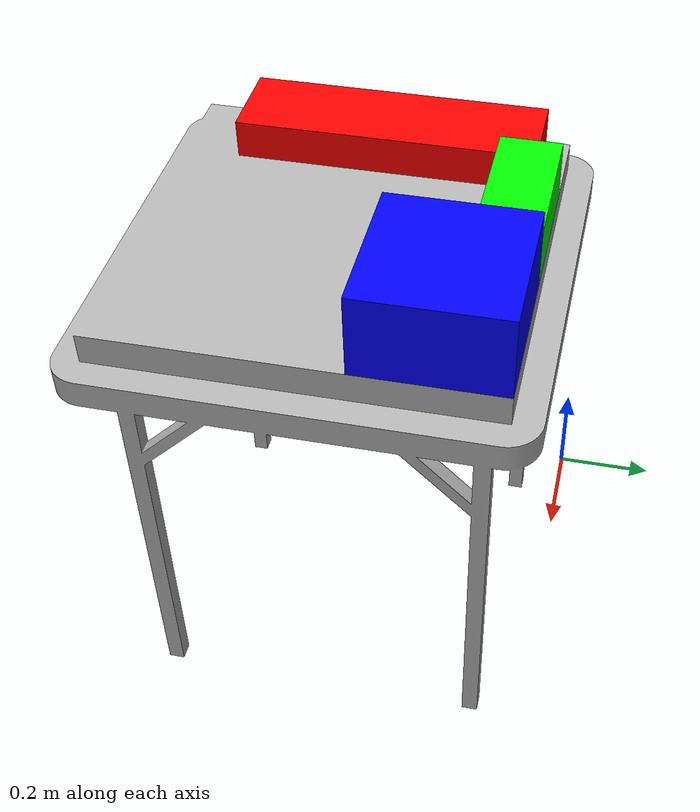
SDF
<?xml version="1.0"?>
<sdf version="1.9">
  <model name="class_table">
    <static>true</static>

    <link name="table_link">
      <pose>0 0 0 1.5708 0 0</pose>
      <visual name="table_visual">
        <geometry>
          <mesh>
            <uri>model://class_table/meshes/table.STL</uri>
            <scale>0.001 0.001 0.001</scale>
          </mesh>
        </geometry>
        <material><ambient>0.7 0.7 0.7 1</ambient></material>
      </visual>
      <collision name="table_collision">
        <geometry>
          <mesh>
            <uri>model://class_table/meshes/table.STL</uri>
            <scale>0.001 0.001 0.001</scale>
          </mesh>
        </geometry>
      </collision>
    </link>

    <link name="box1_link">
      <pose>0.05 -0.645 0.89 0 0 0</pose>
      <visual name="box1_visual">
        <geometry>
          <mesh>
            <uri>model://class_table/meshes/BOX1.STL</uri>
            <scale>0.001 0.001 0.001</scale>
          </mesh>
        </geometry>
        <material><diffuse>1 0 0 1</diffuse></material>
      </visual>
      <collision name="box1_collision">
        <geometry>
          <mesh>
            <uri>model://class_table/meshes/BOX1.STL</uri>
            <scale>0.001 0.001 0.001</scale>
          </mesh>
        </geometry>
      </collision>
    </link>

    <joint name="joint_table_box1" type="fixed">
      <parent>table_link</parent>
      <child>box1_link</child>
    </joint>

    <link name="box2_link">
      <pose>0.22 -0.05 0.89 0 0 -1.5708</pose>
      <visual name="box2_visual">
        <geometry>
          <mesh>
            <uri>model://class_table/meshes/BOX2.STL</uri>
            <scale>0.001 0.001 0.001</scale>
          </mesh>
        </geometry>
        <material><diffuse>0 1 0 1</diffuse></material>
      </visual>
      <collision name="box2_collision">
        <geometry>
          <mesh>
            <uri>model://class_table/meshes/BOX2.STL</uri>
            <scale>0.001 0.001 0.001</scale>
          </mesh>
        </geometry>
      </collision>
    </link>

    <joint name="joint_table_box2" type="fixed">
      <parent>table_link</parent>
      <child>box2_link</child>
    </joint>

    <link name="box3_link">
      <pose>0.48 -0.31 0.89 0 0 0</pose>
      <visual name="box3_visual">
        <geometry>
          <mesh>
            <uri>model://class_table/meshes/BOX3.STL</uri>
            <scale>0.001 0.001 0.001</scale>
          </mesh>
        </geometry>
        <material><diffuse>0 0 1 1</diffuse></material>
      </visual>
      <collision name="box3_collision">
        <geometry>
          <mesh>
            <uri>model://class_table/meshes/BOX3.STL</uri>
            <scale>0.001 0.001 0.001</scale>
          </mesh>
        </geometry>
      </collision>
    </link>

    <joint name="joint_table_box3" type="fixed">
      <parent>table_link</parent>
      <child>box3_link</child>
    </joint>

  </model>
</sdf>
